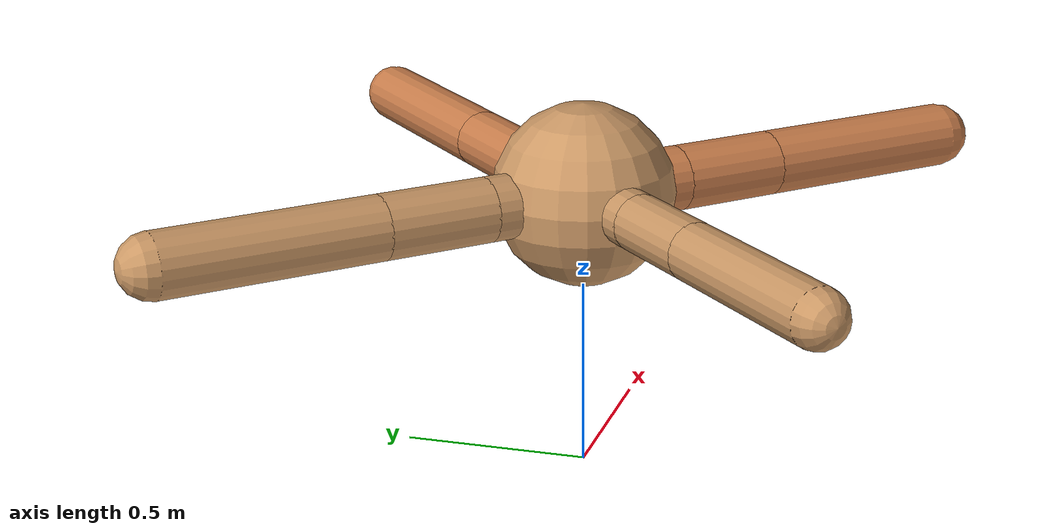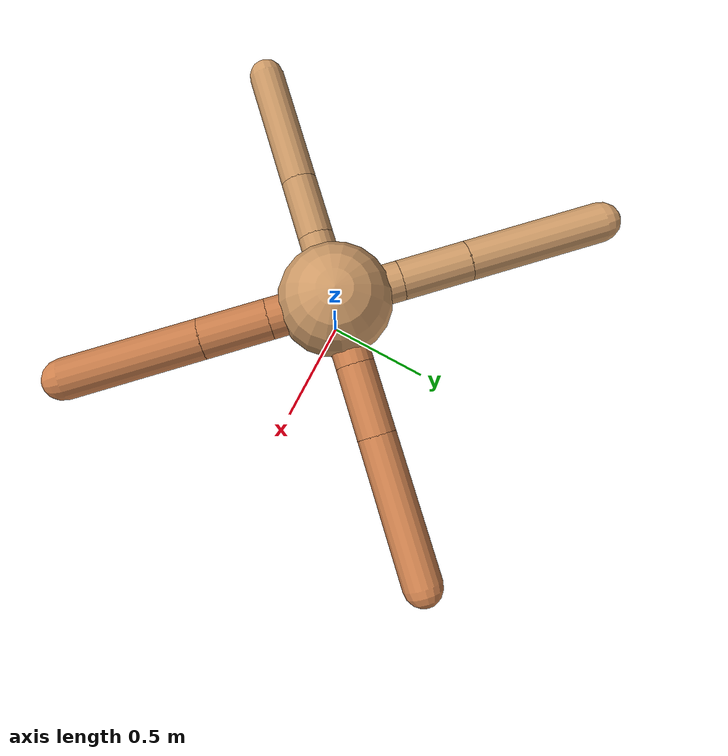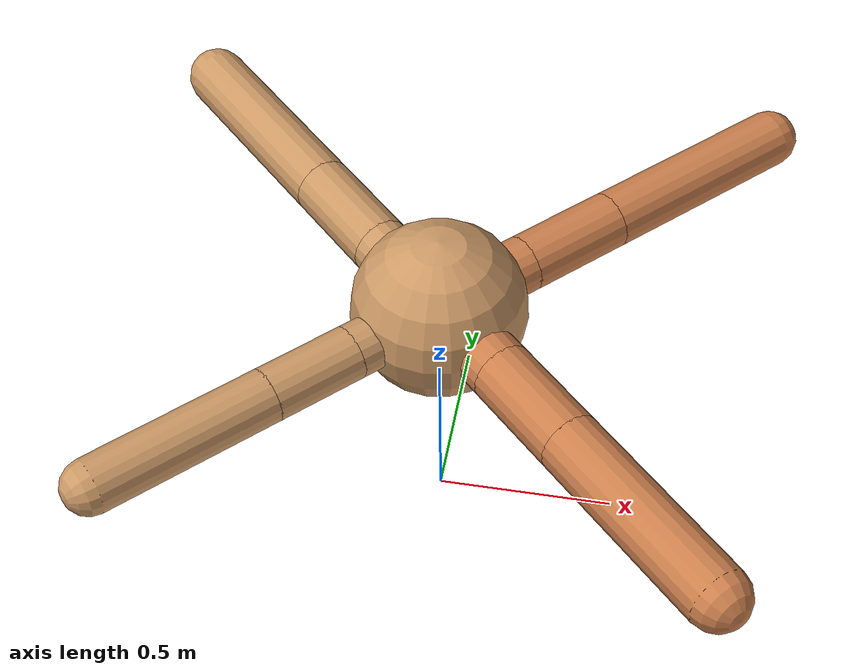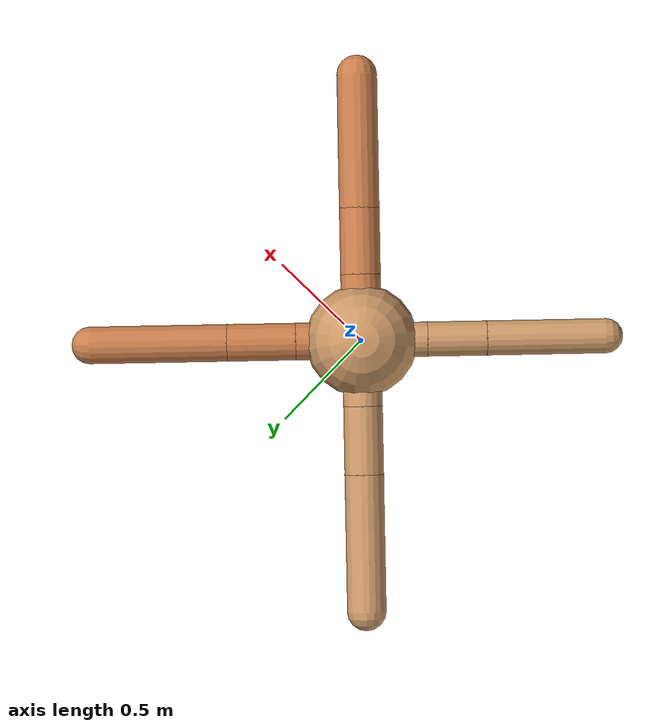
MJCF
<?xml version="1.0" ?>
<mujoco model="ant">

	<compiler angle="degree" coordinate="local" inertiafromgeom="true"/>

	<option integrator="RK4" timestep="0.01"/>

	<custom>

		<numeric data="0.0 0.0 0.55 1.0 0.0 0.0 0.0 0.0 1.0 0.0 -1.0 0.0 -1.0 0.0 1.0" name="init_qpos"/>

	</custom>

	<default>

		<joint armature="1" damping="1" limited="true"/>

		<geom conaffinity="0" condim="3" density="5.0" friction="1.5 0.1 0.1" margin="0.01" rgba="0.8 0.6 0.4 1"/>

	</default>

	<worldbody>

		<body name="torso" pos="0 0 0.75">

			<geom name="torso_geom" pos="0 0 0" size="0.24104231763950792" type="sphere"/>

			<!--joint armature="0" damping="0" limited="false" margin="0.01" name="root" pos="0 0 0" type="free"/-->

			<body name="front_left_leg" pos="0 0 0">

				<geom fromto="0 0 0 0.2 0.2 0" name="aux_1_geom" size="0.0806150604992298" type="capsule" rgba=".8 .5 .3 1"/>

				<body name="aux_1" pos="0.2 0.2 0">

					<joint axis="0 0 1" name="hip_1" pos="0.0 0.0 0.0" range="-40 40" type="hinge"/>

					<geom fromto="0 0 0 0.20858024179537338 0.20858024179537338 0" name="left_leg_geom" size="0.0806150604992298" type="capsule" rgba=".8 .5 .3 1"/>

					<body pos="0.20858024179537338 0.20858024179537338 0" name="front_left_foot">

						<joint axis="-1 1 0" name="ankle_1" pos="0.0 0.0 0.0" range="30 100" type="hinge"/>

						<geom fromto="0 0 0 0.41716048359074676 0.41716048359074676 0" name="left_ankle_geom" size="0.0806150604992298" type="capsule" rgba=".8 .5 .3 1"/>

					</body>

				</body>

			</body>

			<body name="front_right_leg" pos="0 0 0">

				<geom fromto="0 0 0 -0.2 0.2 0" name="aux_2_geom" size="0.08484537643440808" type="capsule"/>

				<body name="aux_2" pos="-0.2 0.2 0">

					<joint axis="0 0 1" name="hip_2" pos="0.0 0.0 0.0" range="-40 40" type="hinge"/>

					<geom fromto="0 0 0 -0.20825332897428717 0.20825332897428717 0" name="right_leg_geom" size="0.08484537643440808" type="capsule"/>

					<body pos="-0.20825332897428717 0.20825332897428717 0" name="front_right_foot">

						<joint axis="1 1 0" name="ankle_2" pos="0.0 0.0 0.0" range="-100 -30" type="hinge"/>

						<geom fromto="0 0 0 -0.41650665794857433 0.41650665794857433 0" name="right_ankle_geom" size="0.08484537643440808" type="capsule"/>

					</body>

				</body>

			</body>

			<body name="left_back_leg" pos="0 0 0">

				<geom fromto="0 0 0 -0.2 -0.2 0" name="aux_3_geom" size="0.07529895856556089" type="capsule"/>

				<body name="aux_3" pos="-0.2 -0.2 0">

					<joint axis="0 0 1" name="hip_3" pos="0.0 0.0 0.0" range="-40 40" type="hinge"/>

					<geom fromto="0 0 0 -0.18066102679636337 -0.18066102679636337 0" name="back_leg_geom" size="0.07529895856556089" type="capsule"/>

					<body pos="-0.18066102679636337 -0.18066102679636337 0" name="left_back_foot">

						<joint axis="-1 1 0" name="ankle_3" pos="0.0 0.0 0.0" range="-100 -30" type="hinge"/>

						<geom fromto="0 0 0 -0.36132205359272673 -0.36132205359272673 0" name="third_ankle_geom" size="0.07529895856556089" type="capsule"/>

					</body>

				</body>

			</body>

			<body name="right_back_leg" pos="0 0 0">

				<geom fromto="0 0 0 0.2 -0.2 0" name="aux_4_geom" size="0.08707336085209381" type="capsule" rgba=".8 .5 .3 1"/>

				<body name="aux_4" pos="0.2 -0.2 0">

					<joint axis="0 0 1" name="hip_4" pos="0.0 0.0 0.0" range="-40 40" type="hinge"/>

					<geom fromto="0 0 0 0.2025137133492499 -0.2025137133492499 0" name="rightback_leg_geom" size="0.08707336085209381" type="capsule" rgba=".8 .5 .3 1"/>

					<body pos="0.2025137133492499 -0.2025137133492499 0" name="right_back_foot">

						<joint axis="1 1 0" name="ankle_4" pos="0.0 0.0 0.0" range="30 100" type="hinge"/>

						<geom fromto="0 0 0 0.4050274266984998 -0.4050274266984998 0" name="fourth_ankle_geom" size="0.08707336085209381" type="capsule" rgba=".8 .5 .3 1"/>

					</body>

				</body>

			</body>

		</body>

	</worldbody>

	<actuator>

		<motor ctrllimited="true" ctrlrange="-1.0 1.0" joint="hip_4" gear="150"/>

		<motor ctrllimited="true" ctrlrange="-1.0 1.0" joint="ankle_4" gear="150"/>

		<motor ctrllimited="true" ctrlrange="-1.0 1.0" joint="hip_1" gear="150"/>

		<motor ctrllimited="true" ctrlrange="-1.0 1.0" joint="ankle_1" gear="150"/>

		<motor ctrllimited="true" ctrlrange="-1.0 1.0" joint="hip_2" gear="150"/>

		<motor ctrllimited="true" ctrlrange="-1.0 1.0" joint="ankle_2" gear="150"/>

		<motor ctrllimited="true" ctrlrange="-1.0 1.0" joint="hip_3" gear="150"/>

		<motor ctrllimited="true" ctrlrange="-1.0 1.0" joint="ankle_3" gear="150"/>

	</actuator>

</mujoco>
